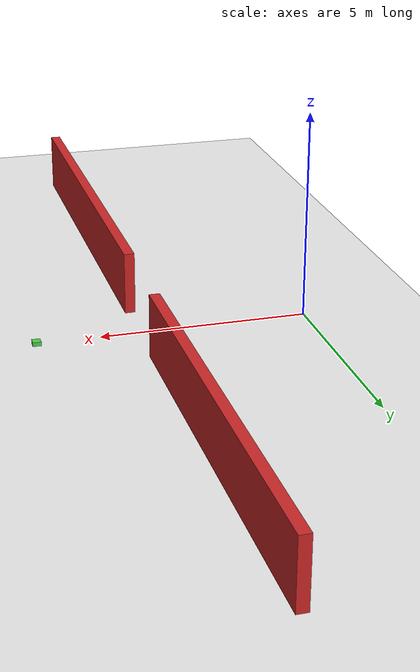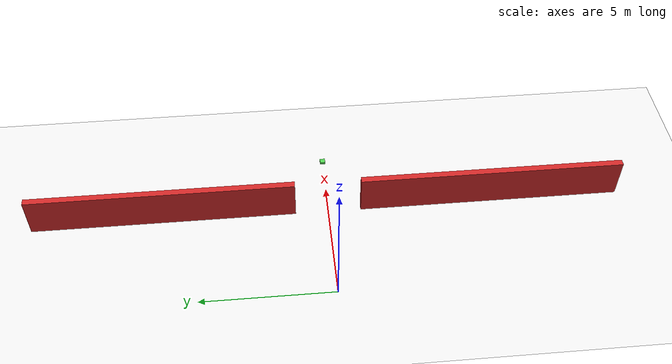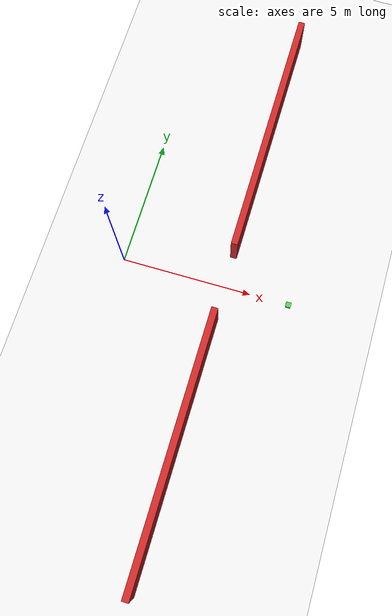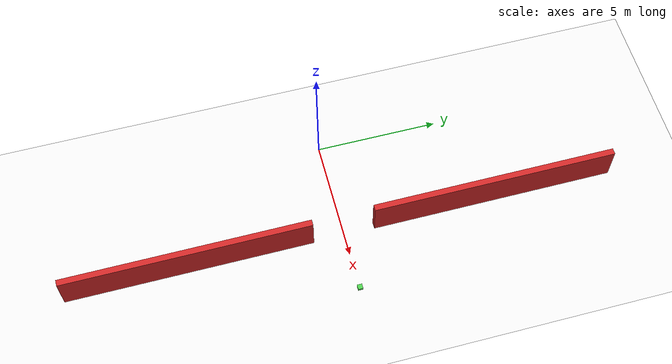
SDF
<sdf version="1.7">
 <world name="default">
  <light name="sun" type="directional">
   <cast_shadows>0</cast_shadows>
   <pose>0 0 10 0 -0 0</pose>
   <diffuse>0.8 0.8 0.8 1</diffuse>
   <specular>0.2 0.2 0.2 1</specular>
   <attenuation>
    <range>1000</range>
    <constant>0.9</constant>
    <linear>0.01</linear>
    <quadratic>0.001</quadratic>
   </attenuation>
   <direction>-0.5 0.1 -0.9</direction>
   <spot><inner_angle>0</inner_angle><outer_angle>0</outer_angle><falloff>0</falloff></spot>
  </light>
  <model name="ground_plane">
   <static>1</static>
   <link name="link">
    <collision name="collision">
     <geometry><plane><normal>0 0 1</normal><size>100 100</size></plane></geometry>
     <surface>
      <contact><collide_bitmask>65535</collide_bitmask></contact>
      <friction><ode><mu>100</mu><mu2>50</mu2></ode></friction>
     </surface>
    </collision>
    <visual name="visual">
     <cast_shadows>0</cast_shadows>
     <geometry><plane><normal>0 0 1</normal><size>100 100</size></plane></geometry>
     <material>
      <script><uri>file://media/materials/scripts/gazebo.material</uri><name>Gazebo/White</name></script>
     </material>
    </visual>
   </link>
  </model>
  <gravity>0 0 -9.8</gravity>
  <magnetic_field>6e-06 2.3e-05 -4.2e-05</magnetic_field>
  <atmosphere type="adiabatic"/>
  <physics type="ode">
   <max_step_size>0.001</max_step_size>
   <real_time_factor>1</real_time_factor>
   <real_time_update_rate>1000</real_time_update_rate>
  </physics>
  <scene><ambient>0.4 0.4 0.4 1</ambient><background>0.7 0.7 0.7 1</background><shadows>0</shadows></scene>
  <spherical_coordinates>
   <surface_model>EARTH_WGS84</surface_model>
   <latitude_deg>0</latitude_deg>
   <longitude_deg>0</longitude_deg>
   <elevation>0</elevation>
   <heading_deg>0</heading_deg>
  </spherical_coordinates>
  <model name="unit_box">
   <link name="link">
    <inertial>
     <mass>1</mass>
     <inertia>
      <ixx>0.166667</ixx>
      <ixy>0</ixy>
      <ixz>0</ixz>
      <iyy>0.166667</iyy>
      <iyz>0</iyz>
      <izz>0.166667</izz>
     </inertia>
    </inertial>
    <visual name="visual">
     <geometry><box><size>0.25 10 2</size></box></geometry>
     <material>
      <script><name>Gazebo/Red</name><uri>file://media/materials/scripts/gazebo.material</uri></script>
      <shader type="pixel"><normal_map>__default__</normal_map></shader>
      <ambient>0.8 0.3 0.3 1</ambient>
      <diffuse>0.7 0.7 0.7 1</diffuse>
      <specular>0.01 0.01 0.01 1</specular>
      <emissive>0 0 0 1</emissive>
     </material>
    </visual>
    <collision name="collision">
     <geometry><box><size>0.25 10 2</size></box></geometry>
     <surface>
      <friction>
       <ode><mu>1</mu><mu2>1</mu2><fdir1>0 0 0</fdir1><slip1>0</slip1><slip2>0</slip2></ode>
       <torsional>
        <coefficient>1</coefficient>
        <patch_radius>0</patch_radius>
        <surface_radius>0</surface_radius>
        <use_patch_radius>1</use_patch_radius>
        <ode><slip>0</slip></ode>
       </torsional>
      </friction>
      <bounce><restitution_coefficient>0</restitution_coefficient><threshold>1e+06</threshold></bounce>
      <contact>
       <collide_without_contact>0</collide_without_contact>
       <collide_without_contact_bitmask>1</collide_without_contact_bitmask>
       <collide_bitmask>1</collide_bitmask>
       <ode>
        <soft_cfm>0</soft_cfm>
        <soft_erp>0.2</soft_erp>
        <kp>1e+13</kp>
        <kd>1</kd>
        <max_vel>0.01</max_vel>
        <min_depth>0</min_depth>
       </ode>
       <bullet>
        <split_impulse>1</split_impulse>
        <split_impulse_penetration_threshold>-0.01</split_impulse_penetration_threshold>
        <soft_cfm>0</soft_cfm>
        <soft_erp>0.2</soft_erp>
        <kp>1e+13</kp>
        <kd>1</kd>
       </bullet>
      </contact>
     </surface>
    </collision>
   </link>
   <static>1</static>
   <pose>4 6.25 0.499995 -1e-05 0 0</pose>
  </model>
  <model name="unit_box_clone">
   <link name="link">
    <inertial>
     <mass>1</mass>
     <inertia>
      <ixx>0.166667</ixx>
      <ixy>0</ixy>
      <ixz>0</ixz>
      <iyy>0.166667</iyy>
      <iyz>0</iyz>
      <izz>0.166667</izz>
     </inertia>
    </inertial>
    <visual name="visual">
     <geometry><box><size>0.25 10 2</size></box></geometry>
     <material>
      <script><name>Gazebo/Red</name><uri>file://media/materials/scripts/gazebo.material</uri></script>
      <shader type="pixel"><normal_map>__default__</normal_map></shader>
      <ambient>0.8 0.3 0.3 1</ambient>
      <diffuse>0.7 0.7 0.7 1</diffuse>
      <specular>0.01 0.01 0.01 1</specular>
      <emissive>0 0 0 1</emissive>
     </material>
    </visual>
    <collision name="collision">
     <geometry><box><size>0.25 10 2</size></box></geometry>
     <surface>
      <friction>
       <ode><mu>1</mu><mu2>1</mu2><fdir1>0 0 0</fdir1><slip1>0</slip1><slip2>0</slip2></ode>
       <torsional>
        <coefficient>1</coefficient>
        <patch_radius>0</patch_radius>
        <surface_radius>0</surface_radius>
        <use_patch_radius>1</use_patch_radius>
        <ode><slip>0</slip></ode>
       </torsional>
      </friction>
      <bounce><restitution_coefficient>0</restitution_coefficient><threshold>1e+06</threshold></bounce>
      <contact>
       <collide_without_contact>0</collide_without_contact>
       <collide_without_contact_bitmask>1</collide_without_contact_bitmask>
       <collide_bitmask>1</collide_bitmask>
       <ode>
        <soft_cfm>0</soft_cfm>
        <soft_erp>0.2</soft_erp>
        <kp>1e+13</kp>
        <kd>1</kd>
        <max_vel>0.01</max_vel>
        <min_depth>0</min_depth>
       </ode>
       <bullet>
        <split_impulse>1</split_impulse>
        <split_impulse_penetration_threshold>-0.01</split_impulse_penetration_threshold>
        <soft_cfm>0</soft_cfm>
        <soft_erp>0.2</soft_erp>
        <kp>1e+13</kp>
        <kd>1</kd>
       </bullet>
      </contact>
     </surface>
    </collision>
   </link>
   <static>1</static>
   <pose>4 -6.25 0.499995 -1e-05 0 0</pose>
  </model>
  <model name="unit_box_0">
   <link name="link">
    <inertial>
     <mass>1</mass>
     <inertia>
      <ixx>0.166667</ixx>
      <ixy>0</ixy>
      <ixz>0</ixz>
      <iyy>0.166667</iyy>
      <iyz>0</iyz>
      <izz>0.166667</izz>
     </inertia>
    </inertial>
    <visual name="visual">
     <geometry><box><size>0.2 0.2 0.1</size></box></geometry>
     <material>
      <script><name>Gazebo/Grey</name><uri>file://media/materials/scripts/gazebo.material</uri></script>
      <shader type="pixel"><normal_map>__default__</normal_map></shader>
      <ambient>0.3 0.8 0.3 1</ambient>
      <diffuse>0.7 0.7 0.7 1</diffuse>
      <specular>0.01 0.01 0.01 1</specular>
      <emissive>0 0 0 1</emissive>
     </material>
     <cast_shadows>0</cast_shadows>
    </visual>
   </link>
   <static>1</static>
   <pose>6.5 0 0.05 1e-05 -0 0</pose>
  </model>
 </world>
</sdf>
